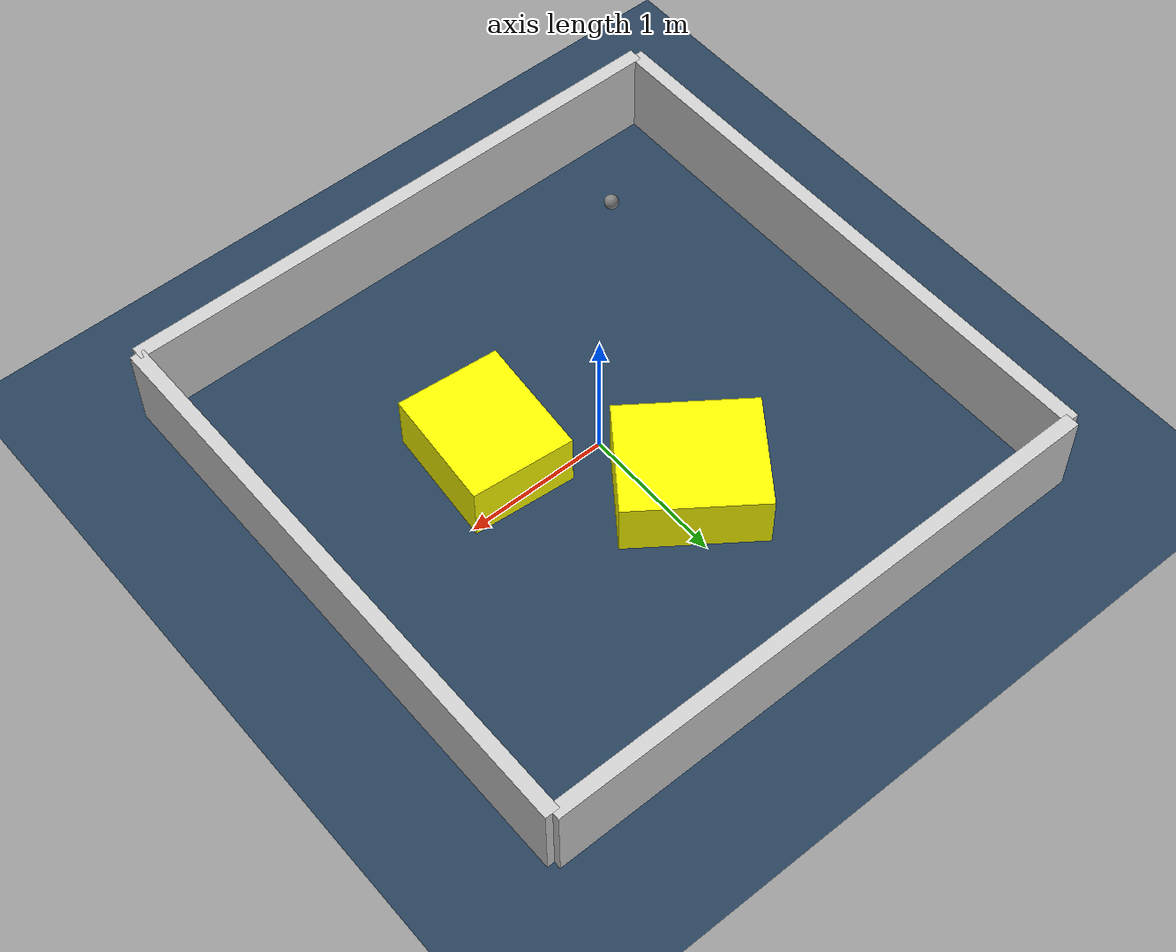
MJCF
<?xml version="1.0" ?>
<mujoco model="generated_environment">
  <option timestep="0.01" integrator="RK4" cone="elliptic"/>
  <default>
    <geom density="1"/>
  </default>
  <asset>
    <texture builtin="gradient" height="3072" rgb1="0.3 0.5 0.7" rgb2="0 0 0" type="skybox" width="512"/>
    <texture builtin="checker" height="300" mark="edge" markrgb="0.8 0.8 0.8" name="groundplane" rgb1="0.2 0.3 0.4" rgb2="0.1 0.2 0.3" type="2d" width="300"/>
    <material name="groundplane" reflectance="0.2" texrepeat="5 5" texture="groundplane" texuniform="true"/>
    <material name="robot" rgba="0.0 1.0 0.0 1"/>
  </asset>
  <worldbody>
    <light dir="0 0 -1" directional="true" pos="0 0 1.5"/>
    <geom condim="4" friction="1.0 0.005 0.001" material="groundplane" name="floor" size="0 0 0.05" type="plane"/>
    <body name="walls">
      <geom name="wall_1" condim="4" pos="-2.0 0.0 0.3" rgba="0.800000011920929 0.800000011920929 0.800000011920929 1.0" size="0.05 2.0 0.3" type="box"/>
      <geom name="wall_2" condim="4" pos="2.0 0.0 0.3" rgba="0.800000011920929 0.800000011920929 0.800000011920929 1.0" size="0.05 2.0 0.3" type="box"/>
      <geom name="wall_3" condim="4" pos="0.0 -2.0 0.3" rgba="0.800000011920929 0.800000011920929 0.800000011920929 1.0" size="2.0 0.05 0.3" type="box"/>
      <geom name="wall_4" condim="4" pos="0.0 2.0 0.3" rgba="0.800000011920929 0.800000011920929 0.800000011920929 1.0" size="2.0 0.05 0.3" type="box"/>
    </body>
    <body name="robot">
      <joint name="joint_x" type="slide" pos="0 0 0" axis="1 0 0"/>
      <joint name="joint_y" type="slide" pos="0 0 0" axis="0 1 0"/>
      <geom name="robot" type="sphere" pos="-1.2450184301110439 -1.3594013525795305 0.2" size="0.05" mass="5." friction="1.0 0.005 0.0001" condim="4"/>
      <site name="sensor_ball"/>
    </body>
    <body name="obstacle_1_movable">
      <geom name="obstacle_1_movable" condim="4" pos="0.6092120755890602 -0.3549582878073605 0.2" euler="0 0 355.1154094985444" friction="1.0 0.005 0.001" rgba="1 1 0 1" size="0.3562851798077561 0.4210101733846501 0.2" type="box" mass="0.1"/>
      <joint type="free"/>
    </body>
    <body name="obstacle_2_movable">
      <geom name="obstacle_2_movable" condim="4" pos="-0.19396516226833227 0.6285444175583199 0.2" euler="0 0 143.78364308704437" friction="1.0 0.005 0.001" rgba="1 1 0 1" size="0.4652959676251174 0.3918302245988629 0.2" type="box" mass="0.1"/>
      <joint type="free"/>
    </body>
  </worldbody>
  <actuator>
    <motor name="actuator_x" joint="joint_x" gear="1" ctrlrange="-1 1"/>
    <motor name="actuator_y" joint="joint_y" gear="1" ctrlrange="-1 1"/>
  </actuator>
</mujoco>
